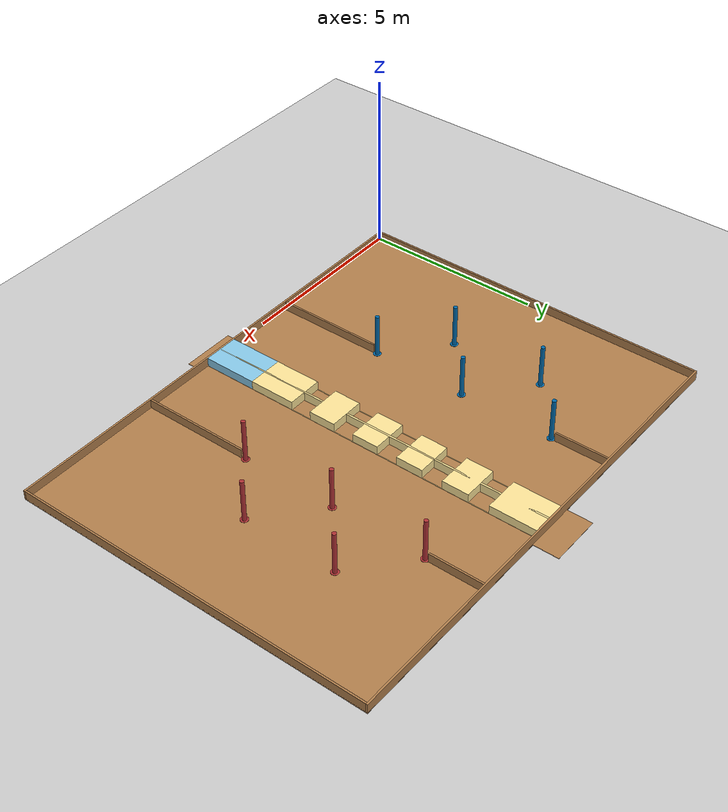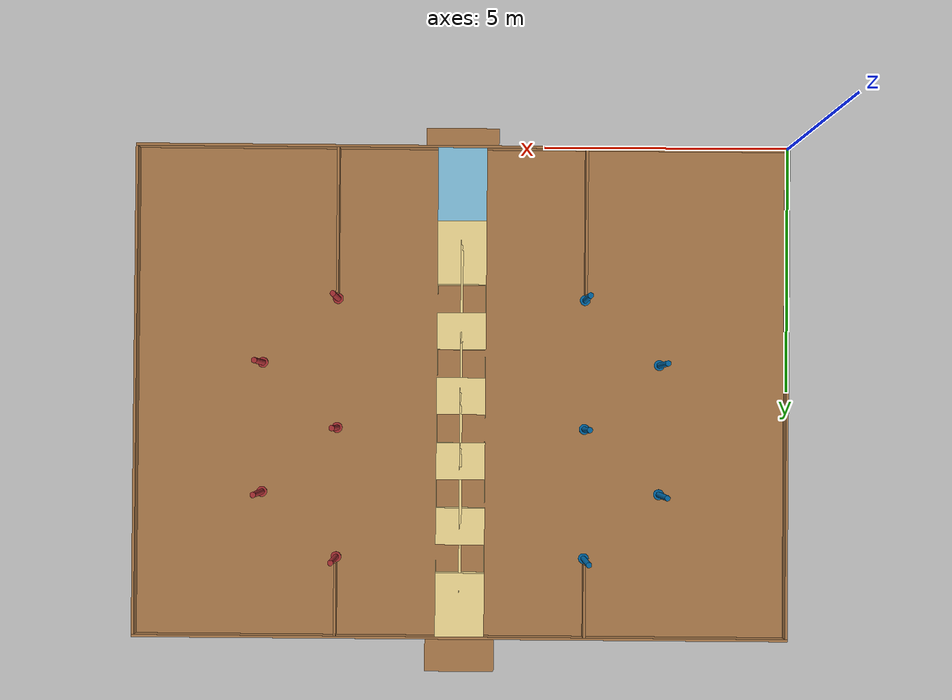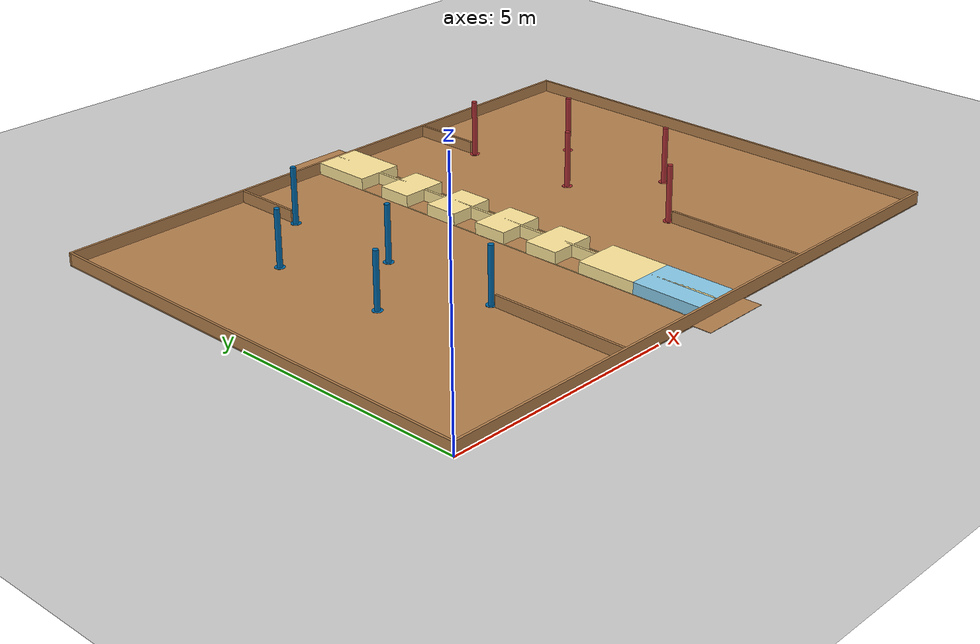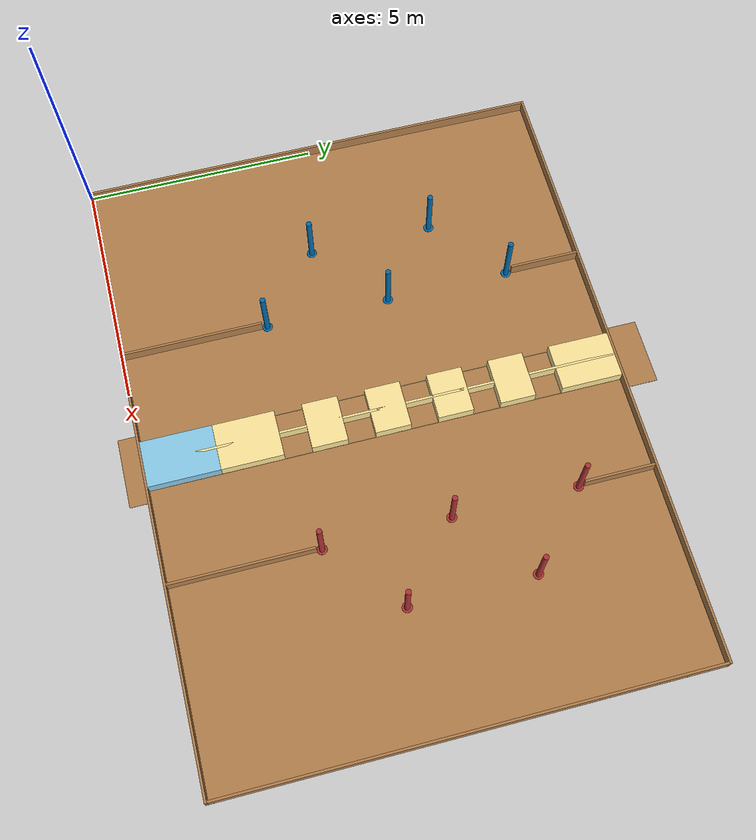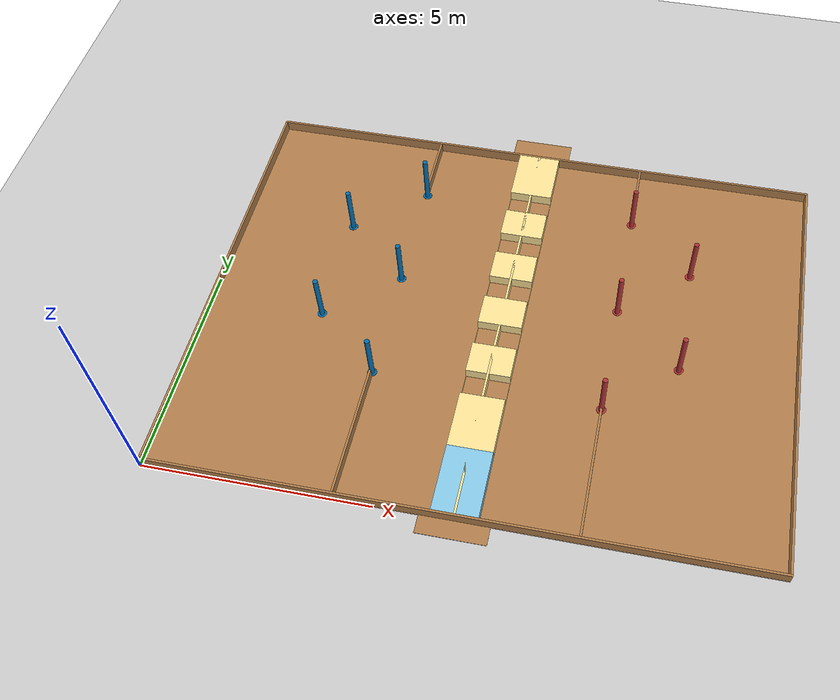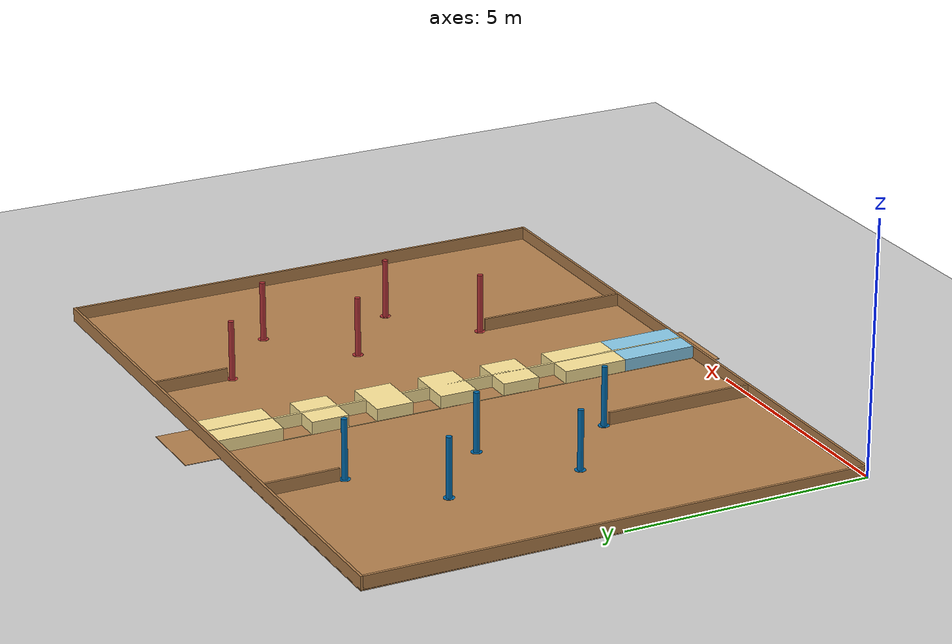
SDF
<?xml version="1.0" ?>
<sdf version="1.6">
  <world name="default">
    <include>
      <uri>model://sun</uri>
    </include>
    <include>
      <uri>model://ground_plane</uri>
    </include>
    <include>
      <uri>model://NHK2020</uri>
      <pose>13.4 0 0 0 0 1.57</pose>
    </include>
  </world>
</sdf>
